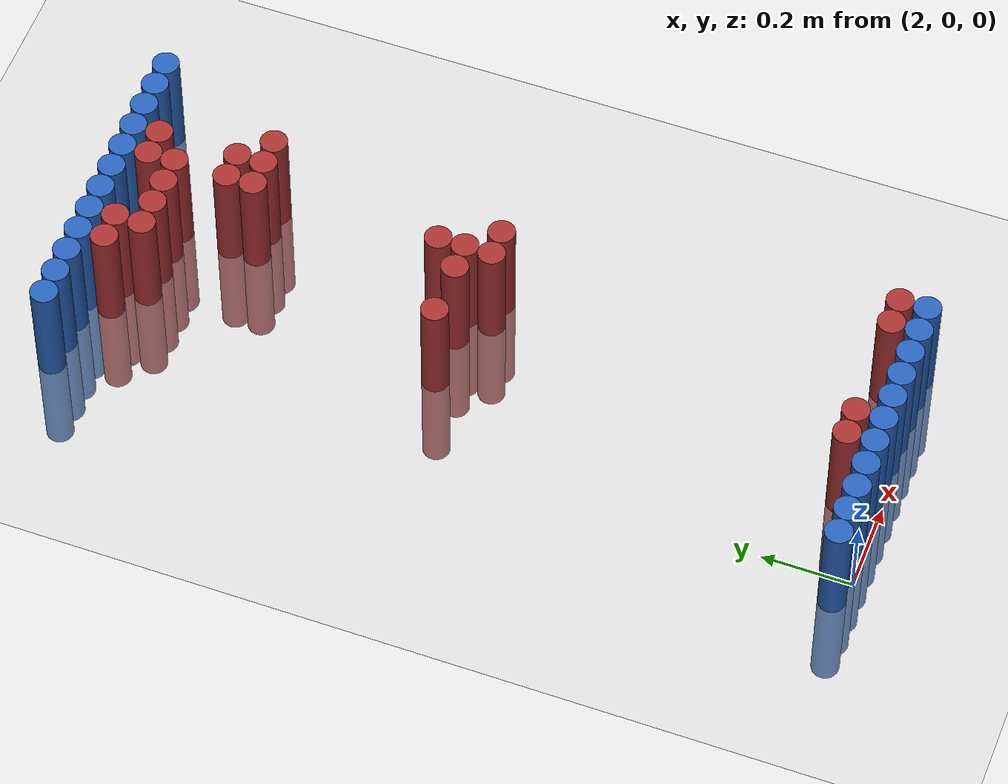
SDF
<sdf version="1.6">
 <world name="default">
  <model name="ground_plane">
   <static>1</static>
   <link name="link">
    <collision name="collision">
     <geometry><plane><normal>0 0 1</normal><size>100 100</size></plane></geometry>
     <surface><friction><ode><mu>100</mu><mu2>50</mu2></ode></friction></surface>
    </collision>
    <visual name="visual">
     <cast_shadows>0</cast_shadows>
     <geometry><plane><normal>0 0 1</normal><size>100 100</size></plane></geometry>
     <material>
      <script><uri>file://media/materials/scripts/gazebo.material</uri><name>Gazebo/Grey</name></script>
     </material>
    </visual>
   </link>
  </model>
  <model name="unit_cylinder_91">
   <static>1</static>
   <pose>1.950000 0.030000 0.000000 0.000000 0.000000 0.000000</pose>
   <link name="link">
    <inertial>
     <mass>1</mass>
     <inertia><ixx>0.145833</ixx><ixy>0</ixy><ixz>0</ixz><iyy>0.145833</iyy><iyz>0</iyz><izz>0.125</izz></inertia>
    </inertial>
    <collision name="collision">
     <geometry><cylinder><radius>0.030000</radius><length>0.5</length></cylinder></geometry>
    </collision>
    <visual name="visual">
     <geometry><cylinder><radius>0.030000</radius><length>0.5</length></cylinder></geometry>
     <material>
      <ambient>0.152000 0.379000 0.720000 1</ambient>
      <diffuse>0.152000 0.379000 0.720000 1</diffuse>
     </material>
     <material>
      <script><name>Gazebo/Grey</name><uri>file://media/materials/scripts/gazebo.material</uri></script>
     </material>
    </visual>
   </link>
  </model>
  <model name="unit_cylinder_92">
   <static>1</static>
   <pose>1.950000 1.770000 0.000000 0.000000 0.000000 0.000000</pose>
   <link name="link">
    <inertial>
     <mass>1</mass>
     <inertia><ixx>0.145833</ixx><ixy>0</ixy><ixz>0</ixz><iyy>0.145833</iyy><iyz>0</iyz><izz>0.125</izz></inertia>
    </inertial>
    <collision name="collision">
     <geometry><cylinder><radius>0.030000</radius><length>0.5</length></cylinder></geometry>
    </collision>
    <visual name="visual">
     <geometry><cylinder><radius>0.030000</radius><length>0.5</length></cylinder></geometry>
     <material>
      <ambient>0.152000 0.379000 0.720000 1</ambient>
      <diffuse>0.152000 0.379000 0.720000 1</diffuse>
     </material>
     <material>
      <script><name>Gazebo/Grey</name><uri>file://media/materials/scripts/gazebo.material</uri></script>
     </material>
    </visual>
   </link>
  </model>
  <model name="unit_cylinder_93">
   <static>1</static>
   <pose>2.010000 0.030000 0.000000 0.000000 0.000000 0.000000</pose>
   <link name="link">
    <inertial>
     <mass>1</mass>
     <inertia><ixx>0.145833</ixx><ixy>0</ixy><ixz>0</ixz><iyy>0.145833</iyy><iyz>0</iyz><izz>0.125</izz></inertia>
    </inertial>
    <collision name="collision">
     <geometry><cylinder><radius>0.030000</radius><length>0.5</length></cylinder></geometry>
    </collision>
    <visual name="visual">
     <geometry><cylinder><radius>0.030000</radius><length>0.5</length></cylinder></geometry>
     <material>
      <ambient>0.152000 0.379000 0.720000 1</ambient>
      <diffuse>0.152000 0.379000 0.720000 1</diffuse>
     </material>
     <material>
      <script><name>Gazebo/Grey</name><uri>file://media/materials/scripts/gazebo.material</uri></script>
     </material>
    </visual>
   </link>
  </model>
  <model name="unit_cylinder_94">
   <static>1</static>
   <pose>2.010000 1.770000 0.000000 0.000000 0.000000 0.000000</pose>
   <link name="link">
    <inertial>
     <mass>1</mass>
     <inertia><ixx>0.145833</ixx><ixy>0</ixy><ixz>0</ixz><iyy>0.145833</iyy><iyz>0</iyz><izz>0.125</izz></inertia>
    </inertial>
    <collision name="collision">
     <geometry><cylinder><radius>0.030000</radius><length>0.5</length></cylinder></geometry>
    </collision>
    <visual name="visual">
     <geometry><cylinder><radius>0.030000</radius><length>0.5</length></cylinder></geometry>
     <material>
      <ambient>0.152000 0.379000 0.720000 1</ambient>
      <diffuse>0.152000 0.379000 0.720000 1</diffuse>
     </material>
     <material>
      <script><name>Gazebo/Grey</name><uri>file://media/materials/scripts/gazebo.material</uri></script>
     </material>
    </visual>
   </link>
  </model>
  <model name="unit_cylinder_95">
   <static>1</static>
   <pose>2.070000 1.770000 0.000000 0.000000 0.000000 0.000000</pose>
   <link name="link">
    <inertial>
     <mass>1</mass>
     <inertia><ixx>0.145833</ixx><ixy>0</ixy><ixz>0</ixz><iyy>0.145833</iyy><iyz>0</iyz><izz>0.125</izz></inertia>
    </inertial>
    <collision name="collision">
     <geometry><cylinder><radius>0.030000</radius><length>0.5</length></cylinder></geometry>
    </collision>
    <visual name="visual">
     <geometry><cylinder><radius>0.030000</radius><length>0.5</length></cylinder></geometry>
     <material>
      <ambient>0.152000 0.379000 0.720000 1</ambient>
      <diffuse>0.152000 0.379000 0.720000 1</diffuse>
     </material>
     <material>
      <script><name>Gazebo/Grey</name><uri>file://media/materials/scripts/gazebo.material</uri></script>
     </material>
    </visual>
   </link>
  </model>
  <model name="unit_cylinder_96">
   <static>1</static>
   <pose>2.130000 1.770000 0.000000 0.000000 0.000000 0.000000</pose>
   <link name="link">
    <inertial>
     <mass>1</mass>
     <inertia><ixx>0.145833</ixx><ixy>0</ixy><ixz>0</ixz><iyy>0.145833</iyy><iyz>0</iyz><izz>0.125</izz></inertia>
    </inertial>
    <collision name="collision">
     <geometry><cylinder><radius>0.030000</radius><length>0.5</length></cylinder></geometry>
    </collision>
    <visual name="visual">
     <geometry><cylinder><radius>0.030000</radius><length>0.5</length></cylinder></geometry>
     <material>
      <ambient>0.152000 0.379000 0.720000 1</ambient>
      <diffuse>0.152000 0.379000 0.720000 1</diffuse>
     </material>
     <material>
      <script><name>Gazebo/Grey</name><uri>file://media/materials/scripts/gazebo.material</uri></script>
     </material>
    </visual>
   </link>
  </model>
  <model name="unit_cylinder_97">
   <static>1</static>
   <pose>2.190000 1.770000 0.000000 0.000000 0.000000 0.000000</pose>
   <link name="link">
    <inertial>
     <mass>1</mass>
     <inertia><ixx>0.145833</ixx><ixy>0</ixy><ixz>0</ixz><iyy>0.145833</iyy><iyz>0</iyz><izz>0.125</izz></inertia>
    </inertial>
    <collision name="collision">
     <geometry><cylinder><radius>0.030000</radius><length>0.5</length></cylinder></geometry>
    </collision>
    <visual name="visual">
     <geometry><cylinder><radius>0.030000</radius><length>0.5</length></cylinder></geometry>
     <material>
      <ambient>0.152000 0.379000 0.720000 1</ambient>
      <diffuse>0.152000 0.379000 0.720000 1</diffuse>
     </material>
     <material>
      <script><name>Gazebo/Grey</name><uri>file://media/materials/scripts/gazebo.material</uri></script>
     </material>
    </visual>
   </link>
  </model>
  <model name="unit_cylinder_98">
   <static>1</static>
   <pose>2.250000 1.770000 0.000000 0.000000 0.000000 0.000000</pose>
   <link name="link">
    <inertial>
     <mass>1</mass>
     <inertia><ixx>0.145833</ixx><ixy>0</ixy><ixz>0</ixz><iyy>0.145833</iyy><iyz>0</iyz><izz>0.125</izz></inertia>
    </inertial>
    <collision name="collision">
     <geometry><cylinder><radius>0.030000</radius><length>0.5</length></cylinder></geometry>
    </collision>
    <visual name="visual">
     <geometry><cylinder><radius>0.030000</radius><length>0.5</length></cylinder></geometry>
     <material>
      <ambient>0.152000 0.379000 0.720000 1</ambient>
      <diffuse>0.152000 0.379000 0.720000 1</diffuse>
     </material>
     <material>
      <script><name>Gazebo/Grey</name><uri>file://media/materials/scripts/gazebo.material</uri></script>
     </material>
    </visual>
   </link>
  </model>
  <model name="unit_cylinder_99">
   <static>1</static>
   <pose>2.310000 1.770000 0.000000 0.000000 0.000000 0.000000</pose>
   <link name="link">
    <inertial>
     <mass>1</mass>
     <inertia><ixx>0.145833</ixx><ixy>0</ixy><ixz>0</ixz><iyy>0.145833</iyy><iyz>0</iyz><izz>0.125</izz></inertia>
    </inertial>
    <collision name="collision">
     <geometry><cylinder><radius>0.030000</radius><length>0.5</length></cylinder></geometry>
    </collision>
    <visual name="visual">
     <geometry><cylinder><radius>0.030000</radius><length>0.5</length></cylinder></geometry>
     <material>
      <ambient>0.152000 0.379000 0.720000 1</ambient>
      <diffuse>0.152000 0.379000 0.720000 1</diffuse>
     </material>
     <material>
      <script><name>Gazebo/Grey</name><uri>file://media/materials/scripts/gazebo.material</uri></script>
     </material>
    </visual>
   </link>
  </model>
  <model name="unit_cylinder_100">
   <static>1</static>
   <pose>2.370000 1.770000 0.000000 0.000000 0.000000 0.000000</pose>
   <link name="link">
    <inertial>
     <mass>1</mass>
     <inertia><ixx>0.145833</ixx><ixy>0</ixy><ixz>0</ixz><iyy>0.145833</iyy><iyz>0</iyz><izz>0.125</izz></inertia>
    </inertial>
    <collision name="collision">
     <geometry><cylinder><radius>0.030000</radius><length>0.5</length></cylinder></geometry>
    </collision>
    <visual name="visual">
     <geometry><cylinder><radius>0.030000</radius><length>0.5</length></cylinder></geometry>
     <material>
      <ambient>0.152000 0.379000 0.720000 1</ambient>
      <diffuse>0.152000 0.379000 0.720000 1</diffuse>
     </material>
     <material>
      <script><name>Gazebo/Grey</name><uri>file://media/materials/scripts/gazebo.material</uri></script>
     </material>
    </visual>
   </link>
  </model>
  <model name="unit_cylinder_101">
   <static>1</static>
   <pose>2.430000 1.770000 0.000000 0.000000 0.000000 0.000000</pose>
   <link name="link">
    <inertial>
     <mass>1</mass>
     <inertia><ixx>0.145833</ixx><ixy>0</ixy><ixz>0</ixz><iyy>0.145833</iyy><iyz>0</iyz><izz>0.125</izz></inertia>
    </inertial>
    <collision name="collision">
     <geometry><cylinder><radius>0.030000</radius><length>0.5</length></cylinder></geometry>
    </collision>
    <visual name="visual">
     <geometry><cylinder><radius>0.030000</radius><length>0.5</length></cylinder></geometry>
     <material>
      <ambient>0.152000 0.379000 0.720000 1</ambient>
      <diffuse>0.152000 0.379000 0.720000 1</diffuse>
     </material>
     <material>
      <script><name>Gazebo/Grey</name><uri>file://media/materials/scripts/gazebo.material</uri></script>
     </material>
    </visual>
   </link>
  </model>
  <model name="unit_cylinder_102">
   <static>1</static>
   <pose>2.490000 1.770000 0.000000 0.000000 0.000000 0.000000</pose>
   <link name="link">
    <inertial>
     <mass>1</mass>
     <inertia><ixx>0.145833</ixx><ixy>0</ixy><ixz>0</ixz><iyy>0.145833</iyy><iyz>0</iyz><izz>0.125</izz></inertia>
    </inertial>
    <collision name="collision">
     <geometry><cylinder><radius>0.030000</radius><length>0.5</length></cylinder></geometry>
    </collision>
    <visual name="visual">
     <geometry><cylinder><radius>0.030000</radius><length>0.5</length></cylinder></geometry>
     <material>
      <ambient>0.152000 0.379000 0.720000 1</ambient>
      <diffuse>0.152000 0.379000 0.720000 1</diffuse>
     </material>
     <material>
      <script><name>Gazebo/Grey</name><uri>file://media/materials/scripts/gazebo.material</uri></script>
     </material>
    </visual>
   </link>
  </model>
  <model name="unit_cylinder_103">
   <static>1</static>
   <pose>2.550000 1.770000 0.000000 0.000000 0.000000 0.000000</pose>
   <link name="link">
    <inertial>
     <mass>1</mass>
     <inertia><ixx>0.145833</ixx><ixy>0</ixy><ixz>0</ixz><iyy>0.145833</iyy><iyz>0</iyz><izz>0.125</izz></inertia>
    </inertial>
    <collision name="collision">
     <geometry><cylinder><radius>0.030000</radius><length>0.5</length></cylinder></geometry>
    </collision>
    <visual name="visual">
     <geometry><cylinder><radius>0.030000</radius><length>0.5</length></cylinder></geometry>
     <material>
      <ambient>0.152000 0.379000 0.720000 1</ambient>
      <diffuse>0.152000 0.379000 0.720000 1</diffuse>
     </material>
     <material>
      <script><name>Gazebo/Grey</name><uri>file://media/materials/scripts/gazebo.material</uri></script>
     </material>
    </visual>
   </link>
  </model>
  <model name="unit_cylinder_104">
   <static>1</static>
   <pose>2.610000 1.770000 0.000000 0.000000 0.000000 0.000000</pose>
   <link name="link">
    <inertial>
     <mass>1</mass>
     <inertia><ixx>0.145833</ixx><ixy>0</ixy><ixz>0</ixz><iyy>0.145833</iyy><iyz>0</iyz><izz>0.125</izz></inertia>
    </inertial>
    <collision name="collision">
     <geometry><cylinder><radius>0.030000</radius><length>0.5</length></cylinder></geometry>
    </collision>
    <visual name="visual">
     <geometry><cylinder><radius>0.030000</radius><length>0.5</length></cylinder></geometry>
     <material>
      <ambient>0.152000 0.379000 0.720000 1</ambient>
      <diffuse>0.152000 0.379000 0.720000 1</diffuse>
     </material>
     <material>
      <script><name>Gazebo/Grey</name><uri>file://media/materials/scripts/gazebo.material</uri></script>
     </material>
    </visual>
   </link>
  </model>
  <model name="unit_cylinder_125">
   <static>1</static>
   <pose>2.130000 1.710000 0.000000 0.000000 0.000000 0.000000</pose>
   <link name="link">
    <inertial>
     <mass>1</mass>
     <inertia><ixx>0.145833</ixx><ixy>0</ixy><ixz>0</ixz><iyy>0.145833</iyy><iyz>0</iyz><izz>0.125</izz></inertia>
    </inertial>
    <collision name="collision">
     <geometry><cylinder><radius>0.030000</radius><length>0.5</length></cylinder></geometry>
    </collision>
    <visual name="visual">
     <geometry><cylinder><radius>0.030000</radius><length>0.5</length></cylinder></geometry>
     <material>
      <ambient>0.648000 0.192000 0.192000 1</ambient>
      <diffuse>0.648000 0.192000 0.192000 1</diffuse>
     </material>
     <material>
      <script><name>Gazebo/Grey</name><uri>file://media/materials/scripts/gazebo.material</uri></script>
     </material>
    </visual>
   </link>
  </model>
  <model name="unit_cylinder_126">
   <static>1</static>
   <pose>2.190000 1.710000 0.000000 0.000000 0.000000 0.000000</pose>
   <link name="link">
    <inertial>
     <mass>1</mass>
     <inertia><ixx>0.145833</ixx><ixy>0</ixy><ixz>0</ixz><iyy>0.145833</iyy><iyz>0</iyz><izz>0.125</izz></inertia>
    </inertial>
    <collision name="collision">
     <geometry><cylinder><radius>0.030000</radius><length>0.5</length></cylinder></geometry>
    </collision>
    <visual name="visual">
     <geometry><cylinder><radius>0.030000</radius><length>0.5</length></cylinder></geometry>
     <material>
      <ambient>0.648000 0.192000 0.192000 1</ambient>
      <diffuse>0.648000 0.192000 0.192000 1</diffuse>
     </material>
     <material>
      <script><name>Gazebo/Grey</name><uri>file://media/materials/scripts/gazebo.material</uri></script>
     </material>
    </visual>
   </link>
  </model>
  <model name="unit_cylinder_127">
   <static>1</static>
   <pose>2.370000 1.710000 0.000000 0.000000 0.000000 0.000000</pose>
   <link name="link">
    <inertial>
     <mass>1</mass>
     <inertia><ixx>0.145833</ixx><ixy>0</ixy><ixz>0</ixz><iyy>0.145833</iyy><iyz>0</iyz><izz>0.125</izz></inertia>
    </inertial>
    <collision name="collision">
     <geometry><cylinder><radius>0.030000</radius><length>0.5</length></cylinder></geometry>
    </collision>
    <visual name="visual">
     <geometry><cylinder><radius>0.030000</radius><length>0.5</length></cylinder></geometry>
     <material>
      <ambient>0.648000 0.192000 0.192000 1</ambient>
      <diffuse>0.648000 0.192000 0.192000 1</diffuse>
     </material>
     <material>
      <script><name>Gazebo/Grey</name><uri>file://media/materials/scripts/gazebo.material</uri></script>
     </material>
    </visual>
   </link>
  </model>
  <model name="unit_cylinder_128">
   <static>1</static>
   <pose>2.430000 1.710000 0.000000 0.000000 0.000000 0.000000</pose>
   <link name="link">
    <inertial>
     <mass>1</mass>
     <inertia><ixx>0.145833</ixx><ixy>0</ixy><ixz>0</ixz><iyy>0.145833</iyy><iyz>0</iyz><izz>0.125</izz></inertia>
    </inertial>
    <collision name="collision">
     <geometry><cylinder><radius>0.030000</radius><length>0.5</length></cylinder></geometry>
    </collision>
    <visual name="visual">
     <geometry><cylinder><radius>0.030000</radius><length>0.5</length></cylinder></geometry>
     <material>
      <ambient>0.648000 0.192000 0.192000 1</ambient>
      <diffuse>0.648000 0.192000 0.192000 1</diffuse>
     </material>
     <material>
      <script><name>Gazebo/Grey</name><uri>file://media/materials/scripts/gazebo.material</uri></script>
     </material>
    </visual>
   </link>
  </model>
  <model name="unit_cylinder_135">
   <static>1</static>
   <pose>2.190000 1.650000 0.000000 0.000000 0.000000 0.000000</pose>
   <link name="link">
    <inertial>
     <mass>1</mass>
     <inertia><ixx>0.145833</ixx><ixy>0</ixy><ixz>0</ixz><iyy>0.145833</iyy><iyz>0</iyz><izz>0.125</izz></inertia>
    </inertial>
    <collision name="collision">
     <geometry><cylinder><radius>0.030000</radius><length>0.5</length></cylinder></geometry>
    </collision>
    <visual name="visual">
     <geometry><cylinder><radius>0.030000</radius><length>0.5</length></cylinder></geometry>
     <material>
      <ambient>0.648000 0.192000 0.192000 1</ambient>
      <diffuse>0.648000 0.192000 0.192000 1</diffuse>
     </material>
     <material>
      <script><name>Gazebo/Grey</name><uri>file://media/materials/scripts/gazebo.material</uri></script>
     </material>
    </visual>
   </link>
  </model>
  <model name="unit_cylinder_136">
   <static>1</static>
   <pose>2.250000 1.650000 0.000000 0.000000 0.000000 0.000000</pose>
   <link name="link">
    <inertial>
     <mass>1</mass>
     <inertia><ixx>0.145833</ixx><ixy>0</ixy><ixz>0</ixz><iyy>0.145833</iyy><iyz>0</iyz><izz>0.125</izz></inertia>
    </inertial>
    <collision name="collision">
     <geometry><cylinder><radius>0.030000</radius><length>0.5</length></cylinder></geometry>
    </collision>
    <visual name="visual">
     <geometry><cylinder><radius>0.030000</radius><length>0.5</length></cylinder></geometry>
     <material>
      <ambient>0.648000 0.192000 0.192000 1</ambient>
      <diffuse>0.648000 0.192000 0.192000 1</diffuse>
     </material>
     <material>
      <script><name>Gazebo/Grey</name><uri>file://media/materials/scripts/gazebo.material</uri></script>
     </material>
    </visual>
   </link>
  </model>
  <model name="unit_cylinder_137">
   <static>1</static>
   <pose>2.310000 1.650000 0.000000 0.000000 0.000000 0.000000</pose>
   <link name="link">
    <inertial>
     <mass>1</mass>
     <inertia><ixx>0.145833</ixx><ixy>0</ixy><ixz>0</ixz><iyy>0.145833</iyy><iyz>0</iyz><izz>0.125</izz></inertia>
    </inertial>
    <collision name="collision">
     <geometry><cylinder><radius>0.030000</radius><length>0.5</length></cylinder></geometry>
    </collision>
    <visual name="visual">
     <geometry><cylinder><radius>0.030000</radius><length>0.5</length></cylinder></geometry>
     <material>
      <ambient>0.648000 0.192000 0.192000 1</ambient>
      <diffuse>0.648000 0.192000 0.192000 1</diffuse>
     </material>
     <material>
      <script><name>Gazebo/Grey</name><uri>file://media/materials/scripts/gazebo.material</uri></script>
     </material>
    </visual>
   </link>
  </model>
  <model name="unit_cylinder_138">
   <static>1</static>
   <pose>2.370000 1.650000 0.000000 0.000000 0.000000 0.000000</pose>
   <link name="link">
    <inertial>
     <mass>1</mass>
     <inertia><ixx>0.145833</ixx><ixy>0</ixy><ixz>0</ixz><iyy>0.145833</iyy><iyz>0</iyz><izz>0.125</izz></inertia>
    </inertial>
    <collision name="collision">
     <geometry><cylinder><radius>0.030000</radius><length>0.5</length></cylinder></geometry>
    </collision>
    <visual name="visual">
     <geometry><cylinder><radius>0.030000</radius><length>0.5</length></cylinder></geometry>
     <material>
      <ambient>0.648000 0.192000 0.192000 1</ambient>
      <diffuse>0.648000 0.192000 0.192000 1</diffuse>
     </material>
     <material>
      <script><name>Gazebo/Grey</name><uri>file://media/materials/scripts/gazebo.material</uri></script>
     </material>
    </visual>
   </link>
  </model>
  <model name="unit_cylinder_140">
   <static>1</static>
   <pose>2.370000 1.530000 0.000000 0.000000 0.000000 0.000000</pose>
   <link name="link">
    <inertial>
     <mass>1</mass>
     <inertia><ixx>0.145833</ixx><ixy>0</ixy><ixz>0</ixz><iyy>0.145833</iyy><iyz>0</iyz><izz>0.125</izz></inertia>
    </inertial>
    <collision name="collision">
     <geometry><cylinder><radius>0.030000</radius><length>0.5</length></cylinder></geometry>
    </collision>
    <visual name="visual">
     <geometry><cylinder><radius>0.030000</radius><length>0.5</length></cylinder></geometry>
     <material>
      <ambient>0.648000 0.192000 0.192000 1</ambient>
      <diffuse>0.648000 0.192000 0.192000 1</diffuse>
     </material>
     <material>
      <script><name>Gazebo/Grey</name><uri>file://media/materials/scripts/gazebo.material</uri></script>
     </material>
    </visual>
   </link>
  </model>
  <model name="unit_cylinder_141">
   <static>1</static>
   <pose>2.430000 1.530000 0.000000 0.000000 0.000000 0.000000</pose>
   <link name="link">
    <inertial>
     <mass>1</mass>
     <inertia><ixx>0.145833</ixx><ixy>0</ixy><ixz>0</ixz><iyy>0.145833</iyy><iyz>0</iyz><izz>0.125</izz></inertia>
    </inertial>
    <collision name="collision">
     <geometry><cylinder><radius>0.030000</radius><length>0.5</length></cylinder></geometry>
    </collision>
    <visual name="visual">
     <geometry><cylinder><radius>0.030000</radius><length>0.5</length></cylinder></geometry>
     <material>
      <ambient>0.648000 0.192000 0.192000 1</ambient>
      <diffuse>0.648000 0.192000 0.192000 1</diffuse>
     </material>
     <material>
      <script><name>Gazebo/Grey</name><uri>file://media/materials/scripts/gazebo.material</uri></script>
     </material>
    </visual>
   </link>
  </model>
  <model name="unit_cylinder_142">
   <static>1</static>
   <pose>2.370000 1.470000 0.000000 0.000000 0.000000 0.000000</pose>
   <link name="link">
    <inertial>
     <mass>1</mass>
     <inertia><ixx>0.145833</ixx><ixy>0</ixy><ixz>0</ixz><iyy>0.145833</iyy><iyz>0</iyz><izz>0.125</izz></inertia>
    </inertial>
    <collision name="collision">
     <geometry><cylinder><radius>0.030000</radius><length>0.5</length></cylinder></geometry>
    </collision>
    <visual name="visual">
     <geometry><cylinder><radius>0.030000</radius><length>0.5</length></cylinder></geometry>
     <material>
      <ambient>0.648000 0.192000 0.192000 1</ambient>
      <diffuse>0.648000 0.192000 0.192000 1</diffuse>
     </material>
     <material>
      <script><name>Gazebo/Grey</name><uri>file://media/materials/scripts/gazebo.material</uri></script>
     </material>
    </visual>
   </link>
  </model>
  <model name="unit_cylinder_143">
   <static>1</static>
   <pose>2.430000 1.470000 0.000000 0.000000 0.000000 0.000000</pose>
   <link name="link">
    <inertial>
     <mass>1</mass>
     <inertia><ixx>0.145833</ixx><ixy>0</ixy><ixz>0</ixz><iyy>0.145833</iyy><iyz>0</iyz><izz>0.125</izz></inertia>
    </inertial>
    <collision name="collision">
     <geometry><cylinder><radius>0.030000</radius><length>0.5</length></cylinder></geometry>
    </collision>
    <visual name="visual">
     <geometry><cylinder><radius>0.030000</radius><length>0.5</length></cylinder></geometry>
     <material>
      <ambient>0.648000 0.192000 0.192000 1</ambient>
      <diffuse>0.648000 0.192000 0.192000 1</diffuse>
     </material>
     <material>
      <script><name>Gazebo/Grey</name><uri>file://media/materials/scripts/gazebo.material</uri></script>
     </material>
    </visual>
   </link>
  </model>
  <model name="unit_cylinder_144">
   <static>1</static>
   <pose>2.490000 1.470000 0.000000 0.000000 0.000000 0.000000</pose>
   <link name="link">
    <inertial>
     <mass>1</mass>
     <inertia><ixx>0.145833</ixx><ixy>0</ixy><ixz>0</ixz><iyy>0.145833</iyy><iyz>0</iyz><izz>0.125</izz></inertia>
    </inertial>
    <collision name="collision">
     <geometry><cylinder><radius>0.030000</radius><length>0.5</length></cylinder></geometry>
    </collision>
    <visual name="visual">
     <geometry><cylinder><radius>0.030000</radius><length>0.5</length></cylinder></geometry>
     <material>
      <ambient>0.648000 0.192000 0.192000 1</ambient>
      <diffuse>0.648000 0.192000 0.192000 1</diffuse>
     </material>
     <material>
      <script><name>Gazebo/Grey</name><uri>file://media/materials/scripts/gazebo.material</uri></script>
     </material>
    </visual>
   </link>
  </model>
  <model name="unit_cylinder_148">
   <static>1</static>
   <pose>2.370000 1.050000 0.000000 0.000000 0.000000 0.000000</pose>
   <link name="link">
    <inertial>
     <mass>1</mass>
     <inertia><ixx>0.145833</ixx><ixy>0</ixy><ixz>0</ixz><iyy>0.145833</iyy><iyz>0</iyz><izz>0.125</izz></inertia>
    </inertial>
    <collision name="collision">
     <geometry><cylinder><radius>0.030000</radius><length>0.5</length></cylinder></geometry>
    </collision>
    <visual name="visual">
     <geometry><cylinder><radius>0.030000</radius><length>0.5</length></cylinder></geometry>
     <material>
      <ambient>0.648000 0.192000 0.192000 1</ambient>
      <diffuse>0.648000 0.192000 0.192000 1</diffuse>
     </material>
     <material>
      <script><name>Gazebo/Grey</name><uri>file://media/materials/scripts/gazebo.material</uri></script>
     </material>
    </visual>
   </link>
  </model>
  <model name="unit_cylinder_150">
   <static>1</static>
   <pose>2.190000 0.990000 0.000000 0.000000 0.000000 0.000000</pose>
   <link name="link">
    <inertial>
     <mass>1</mass>
     <inertia><ixx>0.145833</ixx><ixy>0</ixy><ixz>0</ixz><iyy>0.145833</iyy><iyz>0</iyz><izz>0.125</izz></inertia>
    </inertial>
    <collision name="collision">
     <geometry><cylinder><radius>0.030000</radius><length>0.5</length></cylinder></geometry>
    </collision>
    <visual name="visual">
     <geometry><cylinder><radius>0.030000</radius><length>0.5</length></cylinder></geometry>
     <material>
      <ambient>0.648000 0.192000 0.192000 1</ambient>
      <diffuse>0.648000 0.192000 0.192000 1</diffuse>
     </material>
     <material>
      <script><name>Gazebo/Grey</name><uri>file://media/materials/scripts/gazebo.material</uri></script>
     </material>
    </visual>
   </link>
  </model>
  <model name="unit_cylinder_151">
   <static>1</static>
   <pose>2.310000 0.990000 0.000000 0.000000 0.000000 0.000000</pose>
   <link name="link">
    <inertial>
     <mass>1</mass>
     <inertia><ixx>0.145833</ixx><ixy>0</ixy><ixz>0</ixz><iyy>0.145833</iyy><iyz>0</iyz><izz>0.125</izz></inertia>
    </inertial>
    <collision name="collision">
     <geometry><cylinder><radius>0.030000</radius><length>0.5</length></cylinder></geometry>
    </collision>
    <visual name="visual">
     <geometry><cylinder><radius>0.030000</radius><length>0.5</length></cylinder></geometry>
     <material>
      <ambient>0.648000 0.192000 0.192000 1</ambient>
      <diffuse>0.648000 0.192000 0.192000 1</diffuse>
     </material>
     <material>
      <script><name>Gazebo/Grey</name><uri>file://media/materials/scripts/gazebo.material</uri></script>
     </material>
    </visual>
   </link>
  </model>
  <model name="unit_cylinder_152">
   <static>1</static>
   <pose>2.370000 0.990000 0.000000 0.000000 0.000000 0.000000</pose>
   <link name="link">
    <inertial>
     <mass>1</mass>
     <inertia><ixx>0.145833</ixx><ixy>0</ixy><ixz>0</ixz><iyy>0.145833</iyy><iyz>0</iyz><izz>0.125</izz></inertia>
    </inertial>
    <collision name="collision">
     <geometry><cylinder><radius>0.030000</radius><length>0.5</length></cylinder></geometry>
    </collision>
    <visual name="visual">
     <geometry><cylinder><radius>0.030000</radius><length>0.5</length></cylinder></geometry>
     <material>
      <ambient>0.648000 0.192000 0.192000 1</ambient>
      <diffuse>0.648000 0.192000 0.192000 1</diffuse>
     </material>
     <material>
      <script><name>Gazebo/Grey</name><uri>file://media/materials/scripts/gazebo.material</uri></script>
     </material>
    </visual>
   </link>
  </model>
  <model name="unit_cylinder_157">
   <static>1</static>
   <pose>2.370000 0.930000 0.000000 0.000000 0.000000 0.000000</pose>
   <link name="link">
    <inertial>
     <mass>1</mass>
     <inertia><ixx>0.145833</ixx><ixy>0</ixy><ixz>0</ixz><iyy>0.145833</iyy><iyz>0</iyz><izz>0.125</izz></inertia>
    </inertial>
    <collision name="collision">
     <geometry><cylinder><radius>0.030000</radius><length>0.5</length></cylinder></geometry>
    </collision>
    <visual name="visual">
     <geometry><cylinder><radius>0.030000</radius><length>0.5</length></cylinder></geometry>
     <material>
      <ambient>0.648000 0.192000 0.192000 1</ambient>
      <diffuse>0.648000 0.192000 0.192000 1</diffuse>
     </material>
     <material>
      <script><name>Gazebo/Grey</name><uri>file://media/materials/scripts/gazebo.material</uri></script>
     </material>
    </visual>
   </link>
  </model>
  <model name="unit_cylinder_158">
   <static>1</static>
   <pose>2.430000 0.930000 0.000000 0.000000 0.000000 0.000000</pose>
   <link name="link">
    <inertial>
     <mass>1</mass>
     <inertia><ixx>0.145833</ixx><ixy>0</ixy><ixz>0</ixz><iyy>0.145833</iyy><iyz>0</iyz><izz>0.125</izz></inertia>
    </inertial>
    <collision name="collision">
     <geometry><cylinder><radius>0.030000</radius><length>0.5</length></cylinder></geometry>
    </collision>
    <visual name="visual">
     <geometry><cylinder><radius>0.030000</radius><length>0.5</length></cylinder></geometry>
     <material>
      <ambient>0.648000 0.192000 0.192000 1</ambient>
      <diffuse>0.648000 0.192000 0.192000 1</diffuse>
     </material>
     <material>
      <script><name>Gazebo/Grey</name><uri>file://media/materials/scripts/gazebo.material</uri></script>
     </material>
    </visual>
   </link>
  </model>
  <model name="unit_cylinder_184">
   <static>1</static>
   <pose>2.190000 0.090000 0.000000 0.000000 0.000000 0.000000</pose>
   <link name="link">
    <inertial>
     <mass>1</mass>
     <inertia><ixx>0.145833</ixx><ixy>0</ixy><ixz>0</ixz><iyy>0.145833</iyy><iyz>0</iyz><izz>0.125</izz></inertia>
    </inertial>
    <collision name="collision">
     <geometry><cylinder><radius>0.030000</radius><length>0.5</length></cylinder></geometry>
    </collision>
    <visual name="visual">
     <geometry><cylinder><radius>0.030000</radius><length>0.5</length></cylinder></geometry>
     <material>
      <ambient>0.648000 0.192000 0.192000 1</ambient>
      <diffuse>0.648000 0.192000 0.192000 1</diffuse>
     </material>
     <material>
      <script><name>Gazebo/Grey</name><uri>file://media/materials/scripts/gazebo.material</uri></script>
     </material>
    </visual>
   </link>
  </model>
  <model name="unit_cylinder_185">
   <static>1</static>
   <pose>2.250000 0.090000 0.000000 0.000000 0.000000 0.000000</pose>
   <link name="link">
    <inertial>
     <mass>1</mass>
     <inertia><ixx>0.145833</ixx><ixy>0</ixy><ixz>0</ixz><iyy>0.145833</iyy><iyz>0</iyz><izz>0.125</izz></inertia>
    </inertial>
    <collision name="collision">
     <geometry><cylinder><radius>0.030000</radius><length>0.5</length></cylinder></geometry>
    </collision>
    <visual name="visual">
     <geometry><cylinder><radius>0.030000</radius><length>0.5</length></cylinder></geometry>
     <material>
      <ambient>0.648000 0.192000 0.192000 1</ambient>
      <diffuse>0.648000 0.192000 0.192000 1</diffuse>
     </material>
     <material>
      <script><name>Gazebo/Grey</name><uri>file://media/materials/scripts/gazebo.material</uri></script>
     </material>
    </visual>
   </link>
  </model>
  <model name="unit_cylinder_186">
   <static>1</static>
   <pose>2.490000 0.090000 0.000000 0.000000 0.000000 0.000000</pose>
   <link name="link">
    <inertial>
     <mass>1</mass>
     <inertia><ixx>0.145833</ixx><ixy>0</ixy><ixz>0</ixz><iyy>0.145833</iyy><iyz>0</iyz><izz>0.125</izz></inertia>
    </inertial>
    <collision name="collision">
     <geometry><cylinder><radius>0.030000</radius><length>0.5</length></cylinder></geometry>
    </collision>
    <visual name="visual">
     <geometry><cylinder><radius>0.030000</radius><length>0.5</length></cylinder></geometry>
     <material>
      <ambient>0.648000 0.192000 0.192000 1</ambient>
      <diffuse>0.648000 0.192000 0.192000 1</diffuse>
     </material>
     <material>
      <script><name>Gazebo/Grey</name><uri>file://media/materials/scripts/gazebo.material</uri></script>
     </material>
    </visual>
   </link>
  </model>
  <model name="unit_cylinder_187">
   <static>1</static>
   <pose>2.550000 0.090000 0.000000 0.000000 0.000000 0.000000</pose>
   <link name="link">
    <inertial>
     <mass>1</mass>
     <inertia><ixx>0.145833</ixx><ixy>0</ixy><ixz>0</ixz><iyy>0.145833</iyy><iyz>0</iyz><izz>0.125</izz></inertia>
    </inertial>
    <collision name="collision">
     <geometry><cylinder><radius>0.030000</radius><length>0.5</length></cylinder></geometry>
    </collision>
    <visual name="visual">
     <geometry><cylinder><radius>0.030000</radius><length>0.5</length></cylinder></geometry>
     <material>
      <ambient>0.648000 0.192000 0.192000 1</ambient>
      <diffuse>0.648000 0.192000 0.192000 1</diffuse>
     </material>
     <material>
      <script><name>Gazebo/Grey</name><uri>file://media/materials/scripts/gazebo.material</uri></script>
     </material>
    </visual>
   </link>
  </model>
  <model name="unit_cylinder_198">
   <static>1</static>
   <pose>2.070000 0.030000 0.000000 0.000000 0.000000 0.000000</pose>
   <link name="link">
    <inertial>
     <mass>1</mass>
     <inertia><ixx>0.145833</ixx><ixy>0</ixy><ixz>0</ixz><iyy>0.145833</iyy><iyz>0</iyz><izz>0.125</izz></inertia>
    </inertial>
    <collision name="collision">
     <geometry><cylinder><radius>0.030000</radius><length>0.5</length></cylinder></geometry>
    </collision>
    <visual name="visual">
     <geometry><cylinder><radius>0.030000</radius><length>0.5</length></cylinder></geometry>
     <material>
      <ambient>0.152000 0.379000 0.720000 1</ambient>
      <diffuse>0.152000 0.379000 0.720000 1</diffuse>
     </material>
     <material>
      <script><name>Gazebo/Grey</name><uri>file://media/materials/scripts/gazebo.material</uri></script>
     </material>
    </visual>
   </link>
  </model>
  <model name="unit_cylinder_199">
   <static>1</static>
   <pose>2.130000 0.030000 0.000000 0.000000 0.000000 0.000000</pose>
   <link name="link">
    <inertial>
     <mass>1</mass>
     <inertia><ixx>0.145833</ixx><ixy>0</ixy><ixz>0</ixz><iyy>0.145833</iyy><iyz>0</iyz><izz>0.125</izz></inertia>
    </inertial>
    <collision name="collision">
     <geometry><cylinder><radius>0.030000</radius><length>0.5</length></cylinder></geometry>
    </collision>
    <visual name="visual">
     <geometry><cylinder><radius>0.030000</radius><length>0.5</length></cylinder></geometry>
     <material>
      <ambient>0.152000 0.379000 0.720000 1</ambient>
      <diffuse>0.152000 0.379000 0.720000 1</diffuse>
     </material>
     <material>
      <script><name>Gazebo/Grey</name><uri>file://media/materials/scripts/gazebo.material</uri></script>
     </material>
    </visual>
   </link>
  </model>
  <model name="unit_cylinder_200">
   <static>1</static>
   <pose>2.190000 0.030000 0.000000 0.000000 0.000000 0.000000</pose>
   <link name="link">
    <inertial>
     <mass>1</mass>
     <inertia><ixx>0.145833</ixx><ixy>0</ixy><ixz>0</ixz><iyy>0.145833</iyy><iyz>0</iyz><izz>0.125</izz></inertia>
    </inertial>
    <collision name="collision">
     <geometry><cylinder><radius>0.030000</radius><length>0.5</length></cylinder></geometry>
    </collision>
    <visual name="visual">
     <geometry><cylinder><radius>0.030000</radius><length>0.5</length></cylinder></geometry>
     <material>
      <ambient>0.152000 0.379000 0.720000 1</ambient>
      <diffuse>0.152000 0.379000 0.720000 1</diffuse>
     </material>
     <material>
      <script><name>Gazebo/Grey</name><uri>file://media/materials/scripts/gazebo.material</uri></script>
     </material>
    </visual>
   </link>
  </model>
  <model name="unit_cylinder_201">
   <static>1</static>
   <pose>2.250000 0.030000 0.000000 0.000000 0.000000 0.000000</pose>
   <link name="link">
    <inertial>
     <mass>1</mass>
     <inertia><ixx>0.145833</ixx><ixy>0</ixy><ixz>0</ixz><iyy>0.145833</iyy><iyz>0</iyz><izz>0.125</izz></inertia>
    </inertial>
    <collision name="collision">
     <geometry><cylinder><radius>0.030000</radius><length>0.5</length></cylinder></geometry>
    </collision>
    <visual name="visual">
     <geometry><cylinder><radius>0.030000</radius><length>0.5</length></cylinder></geometry>
     <material>
      <ambient>0.152000 0.379000 0.720000 1</ambient>
      <diffuse>0.152000 0.379000 0.720000 1</diffuse>
     </material>
     <material>
      <script><name>Gazebo/Grey</name><uri>file://media/materials/scripts/gazebo.material</uri></script>
     </material>
    </visual>
   </link>
  </model>
  <model name="unit_cylinder_202">
   <static>1</static>
   <pose>2.310000 0.030000 0.000000 0.000000 0.000000 0.000000</pose>
   <link name="link">
    <inertial>
     <mass>1</mass>
     <inertia><ixx>0.145833</ixx><ixy>0</ixy><ixz>0</ixz><iyy>0.145833</iyy><iyz>0</iyz><izz>0.125</izz></inertia>
    </inertial>
    <collision name="collision">
     <geometry><cylinder><radius>0.030000</radius><length>0.5</length></cylinder></geometry>
    </collision>
    <visual name="visual">
     <geometry><cylinder><radius>0.030000</radius><length>0.5</length></cylinder></geometry>
     <material>
      <ambient>0.152000 0.379000 0.720000 1</ambient>
      <diffuse>0.152000 0.379000 0.720000 1</diffuse>
     </material>
     <material>
      <script><name>Gazebo/Grey</name><uri>file://media/materials/scripts/gazebo.material</uri></script>
     </material>
    </visual>
   </link>
  </model>
  <model name="unit_cylinder_203">
   <static>1</static>
   <pose>2.370000 0.030000 0.000000 0.000000 0.000000 0.000000</pose>
   <link name="link">
    <inertial>
     <mass>1</mass>
     <inertia><ixx>0.145833</ixx><ixy>0</ixy><ixz>0</ixz><iyy>0.145833</iyy><iyz>0</iyz><izz>0.125</izz></inertia>
    </inertial>
    <collision name="collision">
     <geometry><cylinder><radius>0.030000</radius><length>0.5</length></cylinder></geometry>
    </collision>
    <visual name="visual">
     <geometry><cylinder><radius>0.030000</radius><length>0.5</length></cylinder></geometry>
     <material>
      <ambient>0.152000 0.379000 0.720000 1</ambient>
      <diffuse>0.152000 0.379000 0.720000 1</diffuse>
     </material>
     <material>
      <script><name>Gazebo/Grey</name><uri>file://media/materials/scripts/gazebo.material</uri></script>
     </material>
    </visual>
   </link>
  </model>
  <model name="unit_cylinder_204">
   <static>1</static>
   <pose>2.430000 0.030000 0.000000 0.000000 0.000000 0.000000</pose>
   <link name="link">
    <inertial>
     <mass>1</mass>
     <inertia><ixx>0.145833</ixx><ixy>0</ixy><ixz>0</ixz><iyy>0.145833</iyy><iyz>0</iyz><izz>0.125</izz></inertia>
    </inertial>
    <collision name="collision">
     <geometry><cylinder><radius>0.030000</radius><length>0.5</length></cylinder></geometry>
    </collision>
    <visual name="visual">
     <geometry><cylinder><radius>0.030000</radius><length>0.5</length></cylinder></geometry>
     <material>
      <ambient>0.152000 0.379000 0.720000 1</ambient>
      <diffuse>0.152000 0.379000 0.720000 1</diffuse>
     </material>
     <material>
      <script><name>Gazebo/Grey</name><uri>file://media/materials/scripts/gazebo.material</uri></script>
     </material>
    </visual>
   </link>
  </model>
  <model name="unit_cylinder_205">
   <static>1</static>
   <pose>2.490000 0.030000 0.000000 0.000000 0.000000 0.000000</pose>
   <link name="link">
    <inertial>
     <mass>1</mass>
     <inertia><ixx>0.145833</ixx><ixy>0</ixy><ixz>0</ixz><iyy>0.145833</iyy><iyz>0</iyz><izz>0.125</izz></inertia>
    </inertial>
    <collision name="collision">
     <geometry><cylinder><radius>0.030000</radius><length>0.5</length></cylinder></geometry>
    </collision>
    <visual name="visual">
     <geometry><cylinder><radius>0.030000</radius><length>0.5</length></cylinder></geometry>
     <material>
      <ambient>0.152000 0.379000 0.720000 1</ambient>
      <diffuse>0.152000 0.379000 0.720000 1</diffuse>
     </material>
     <material>
      <script><name>Gazebo/Grey</name><uri>file://media/materials/scripts/gazebo.material</uri></script>
     </material>
    </visual>
   </link>
  </model>
  <model name="unit_cylinder_206">
   <static>1</static>
   <pose>2.550000 0.030000 0.000000 0.000000 0.000000 0.000000</pose>
   <link name="link">
    <inertial>
     <mass>1</mass>
     <inertia><ixx>0.145833</ixx><ixy>0</ixy><ixz>0</ixz><iyy>0.145833</iyy><iyz>0</iyz><izz>0.125</izz></inertia>
    </inertial>
    <collision name="collision">
     <geometry><cylinder><radius>0.030000</radius><length>0.5</length></cylinder></geometry>
    </collision>
    <visual name="visual">
     <geometry><cylinder><radius>0.030000</radius><length>0.5</length></cylinder></geometry>
     <material>
      <ambient>0.152000 0.379000 0.720000 1</ambient>
      <diffuse>0.152000 0.379000 0.720000 1</diffuse>
     </material>
     <material>
      <script><name>Gazebo/Grey</name><uri>file://media/materials/scripts/gazebo.material</uri></script>
     </material>
    </visual>
   </link>
  </model>
 </world>
</sdf>
